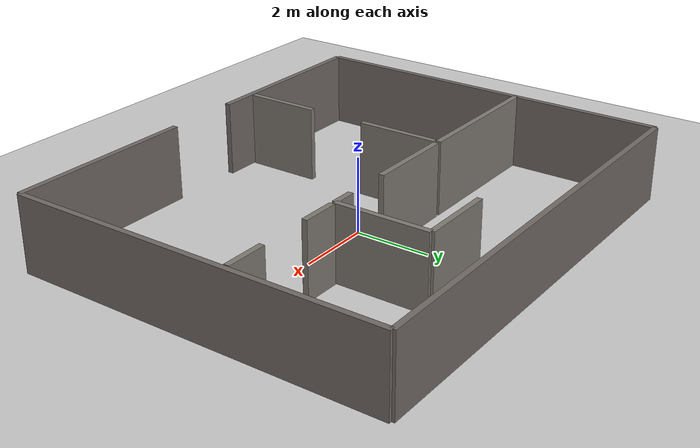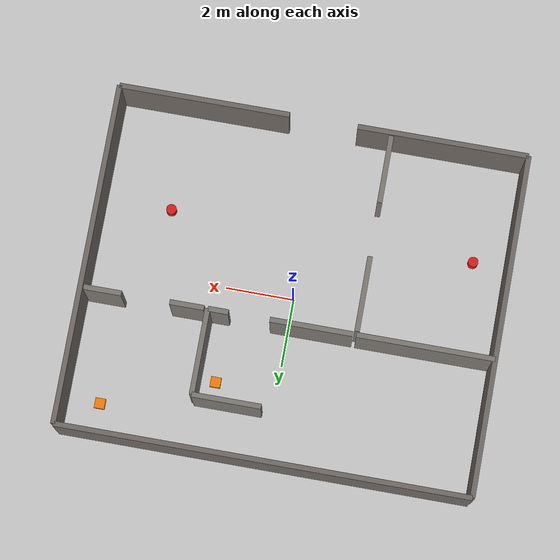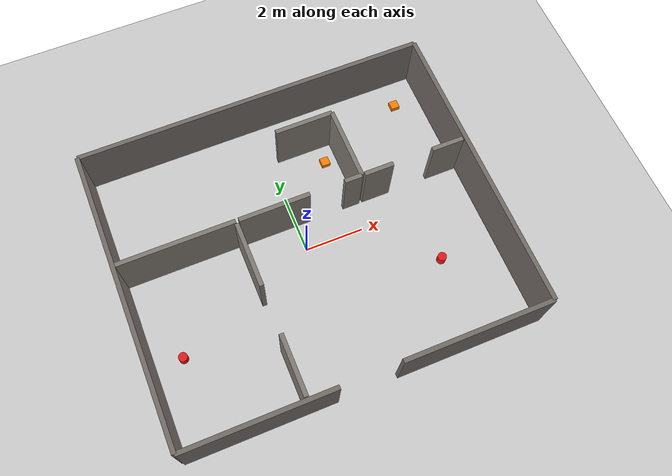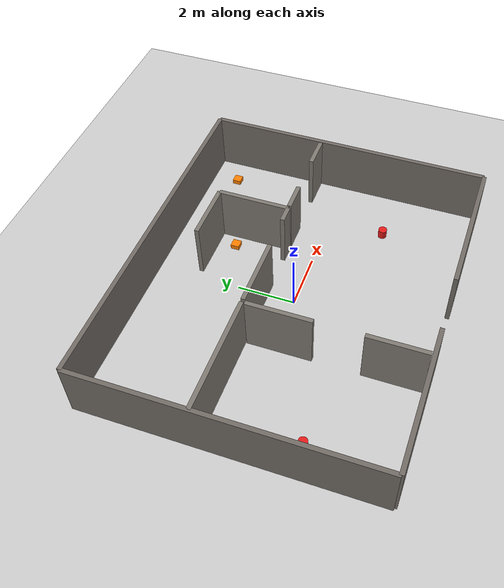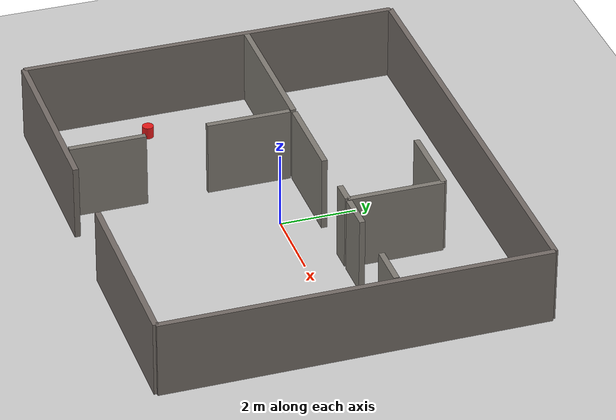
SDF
<sdf version="1.6">
 <world name="disaster_building">
  <physics type="ode">
   <max_step_size>0.005</max_step_size>
   <real_time_factor>1.0</real_time_factor>
   <real_time_update_rate>200</real_time_update_rate>
  </physics>
  <include><uri>model://sun</uri></include>
  <include><uri>model://ground_plane</uri></include>
  <model name="wall_south_left">
   <static>true</static>
   <pose>-3.5 -5.0 1.0 0 0 0</pose>
   <link name="link">
    <collision name="collision"><geometry><box><size>5.0 0.15 2.0</size></box></geometry></collision>
    <visual name="visual">
     <geometry><box><size>5.0 0.15 2.0</size></box></geometry>
     <material><ambient>0.45 0.42 0.40 1</ambient><diffuse>0.45 0.42 0.40 1</diffuse></material>
    </visual>
   </link>
  </model>
  <model name="wall_south_right">
   <static>true</static>
   <pose>3.5 -5.0 1.0 0 0 0</pose>
   <link name="link">
    <collision name="collision"><geometry><box><size>5.0 0.15 2.0</size></box></geometry></collision>
    <visual name="visual">
     <geometry><box><size>5.0 0.15 2.0</size></box></geometry>
     <material><ambient>0.45 0.42 0.40 1</ambient><diffuse>0.45 0.42 0.40 1</diffuse></material>
    </visual>
   </link>
  </model>
  <model name="wall_north">
   <static>true</static>
   <pose>0.0 5.0 1.0 0 0 0</pose>
   <link name="link">
    <collision name="collision"><geometry><box><size>12.0 0.15 2.0</size></box></geometry></collision>
    <visual name="visual">
     <geometry><box><size>12.0 0.15 2.0</size></box></geometry>
     <material><ambient>0.45 0.42 0.40 1</ambient><diffuse>0.45 0.42 0.40 1</diffuse></material>
    </visual>
   </link>
  </model>
  <model name="wall_west">
   <static>true</static>
   <pose>-6.0 0.0 1.0 0 0 0</pose>
   <link name="link">
    <collision name="collision"><geometry><box><size>0.15 10.0 2.0</size></box></geometry></collision>
    <visual name="visual">
     <geometry><box><size>0.15 10.0 2.0</size></box></geometry>
     <material><ambient>0.45 0.42 0.40 1</ambient><diffuse>0.45 0.42 0.40 1</diffuse></material>
    </visual>
   </link>
  </model>
  <model name="wall_east">
   <static>true</static>
   <pose>6.0 0.0 1.0 0 0 0</pose>
   <link name="link">
    <collision name="collision"><geometry><box><size>0.15 10.0 2.0</size></box></geometry></collision>
    <visual name="visual">
     <geometry><box><size>0.15 10.0 2.0</size></box></geometry>
     <material><ambient>0.45 0.42 0.40 1</ambient><diffuse>0.45 0.42 0.40 1</diffuse></material>
    </visual>
   </link>
  </model>
  <model name="wall_officeA_west_lower">
   <static>true</static>
   <pose>-2.0 -3.9 1.0 0 0 0</pose>
   <link name="link">
    <collision name="collision"><geometry><box><size>0.15 2.0 2.0</size></box></geometry></collision>
    <visual name="visual">
     <geometry><box><size>0.15 2.0 2.0</size></box></geometry>
     <material><ambient>0.50 0.48 0.45 1</ambient><diffuse>0.50 0.48 0.45 1</diffuse></material>
    </visual>
   </link>
  </model>
  <model name="wall_officeA_west_upper">
   <static>true</static>
   <pose>-2.0 -0.2 1.0 0 0 0</pose>
   <link name="link">
    <collision name="collision"><geometry><box><size>0.15 2.2 2.0</size></box></geometry></collision>
    <visual name="visual">
     <geometry><box><size>0.15 2.2 2.0</size></box></geometry>
     <material><ambient>0.50 0.48 0.45 1</ambient><diffuse>0.50 0.48 0.45 1</diffuse></material>
    </visual>
   </link>
  </model>
  <model name="wall_officeA_north">
   <static>true</static>
   <pose>-4.0 1.0 1.0 0 0 0</pose>
   <link name="link">
    <collision name="collision"><geometry><box><size>4.0 0.15 2.0</size></box></geometry></collision>
    <visual name="visual">
     <geometry><box><size>4.0 0.15 2.0</size></box></geometry>
     <material><ambient>0.50 0.48 0.45 1</ambient><diffuse>0.50 0.48 0.45 1</diffuse></material>
    </visual>
   </link>
  </model>
  <model name="wall_corridor_bend_left">
   <static>true</static>
   <pose>-0.7 1.0 1.0 0 0 0</pose>
   <link name="link">
    <collision name="collision"><geometry><box><size>2.4 0.15 2.0</size></box></geometry></collision>
    <visual name="visual">
     <geometry><box><size>2.4 0.15 2.0</size></box></geometry>
     <material><ambient>0.50 0.48 0.45 1</ambient><diffuse>0.50 0.48 0.45 1</diffuse></material>
    </visual>
   </link>
  </model>
  <model name="wall_corridor_bend_right">
   <static>true</static>
   <pose>2.0 1.0 1.0 0 0 0</pose>
   <link name="link">
    <collision name="collision"><geometry><box><size>0.6 0.15 2.0</size></box></geometry></collision>
    <visual name="visual">
     <geometry><box><size>0.6 0.15 2.0</size></box></geometry>
     <material><ambient>0.50 0.48 0.45 1</ambient><diffuse>0.50 0.48 0.45 1</diffuse></material>
    </visual>
   </link>
  </model>
  <model name="wall_server_east">
   <static>true</static>
   <pose>2.3 2.25 1.0 0 0 0</pose>
   <link name="link">
    <collision name="collision"><geometry><box><size>0.15 2.5 2.0</size></box></geometry></collision>
    <visual name="visual">
     <geometry><box><size>0.15 2.5 2.0</size></box></geometry>
     <material><ambient>0.50 0.48 0.45 1</ambient><diffuse>0.50 0.48 0.45 1</diffuse></material>
    </visual>
   </link>
  </model>
  <model name="wall_server_north">
   <static>true</static>
   <pose>1.3 3.5 1.0 0 0 0</pose>
   <link name="link">
    <collision name="collision"><geometry><box><size>2.0 0.15 2.0</size></box></geometry></collision>
    <visual name="visual">
     <geometry><box><size>2.0 0.15 2.0</size></box></geometry>
     <material><ambient>0.50 0.48 0.45 1</ambient><diffuse>0.50 0.48 0.45 1</diffuse></material>
    </visual>
   </link>
  </model>
  <model name="wall_officeB_south_left">
   <static>true</static>
   <pose>2.9 1.0 1.0 0 0 0</pose>
   <link name="link">
    <collision name="collision"><geometry><box><size>1.0 0.15 2.0</size></box></geometry></collision>
    <visual name="visual">
     <geometry><box><size>1.0 0.15 2.0</size></box></geometry>
     <material><ambient>0.50 0.48 0.45 1</ambient><diffuse>0.50 0.48 0.45 1</diffuse></material>
    </visual>
   </link>
  </model>
  <model name="wall_officeB_south_right">
   <static>true</static>
   <pose>5.35 1.0 1.0 0 0 0</pose>
   <link name="link">
    <collision name="collision"><geometry><box><size>1.1 0.15 2.0</size></box></geometry></collision>
    <visual name="visual">
     <geometry><box><size>1.1 0.15 2.0</size></box></geometry>
     <material><ambient>0.50 0.48 0.45 1</ambient><diffuse>0.50 0.48 0.45 1</diffuse></material>
    </visual>
   </link>
  </model>
  <include><uri>model://red_cylinder</uri><name>fire_office_a</name><pose>-5.0 -2.0 0.0 0 0 0</pose></include>
  <include><uri>model://red_cylinder</uri><name>fire_corridor</name><pose>4.0 -2.0 0.0 0 0 0</pose></include>
  <include><uri>model://orange_box</uri><name>hazmat_server</name><pose>1.8 2.8 0.0 0 0 0</pose></include>
  <include><uri>model://orange_box</uri><name>hazmat_office_b</name><pose>5.0 4.0 0.0 0 0 0</pose></include>
 </world>
</sdf>

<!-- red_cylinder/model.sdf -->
<sdf version="1.6">
  <model name="red_cylinder">
    <static>true</static>
    <link name="link">
      <visual name="visual">
        <geometry>
          <cylinder>
            <radius>0.15</radius>
            <length>0.6</length>
          </cylinder>
        </geometry>
        <material>
          <ambient>0.9 0.1 0.1 1</ambient>
          <diffuse>0.9 0.1 0.1 1</diffuse>
          <specular>0.3 0.3 0.3 1</specular>
        </material>
      </visual>
      <collision name="collision">
        <geometry>
          <cylinder>
            <radius>0.15</radius>
            <length>0.6</length>
          </cylinder>
        </geometry>
      </collision>
      <inertial>
        <mass>1.0</mass>
      </inertial>
    </link>
  </model>
</sdf>

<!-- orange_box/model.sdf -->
<sdf version="1.6">
  <model name="orange_box">
    <static>true</static>
    <link name="link">
      <visual name="visual">
        <geometry>
          <box>
            <size>0.3 0.3 0.3</size>
          </box>
        </geometry>
        <material>
          <ambient>1.0 0.5 0.0 1</ambient>
          <diffuse>1.0 0.5 0.0 1</diffuse>
          <specular>0.3 0.3 0.3 1</specular>
        </material>
      </visual>
      <collision name="collision">
        <geometry>
          <box>
            <size>0.3 0.3 0.3</size>
          </box>
        </geometry>
      </collision>
      <inertial>
        <mass>1.0</mass>
      </inertial>
    </link>
  </model>
</sdf>
